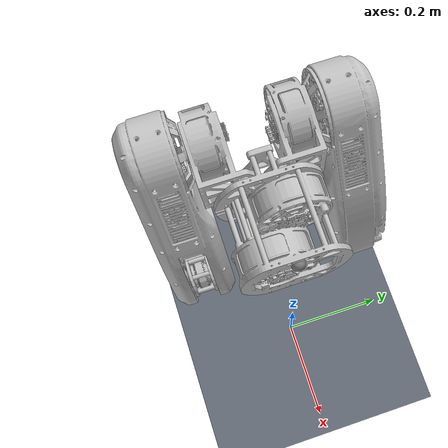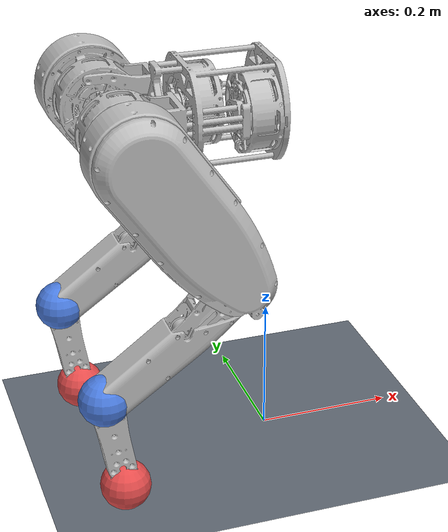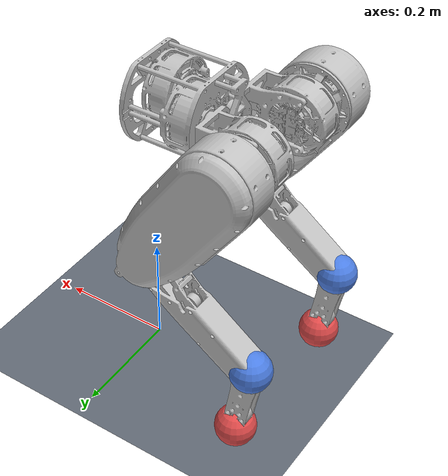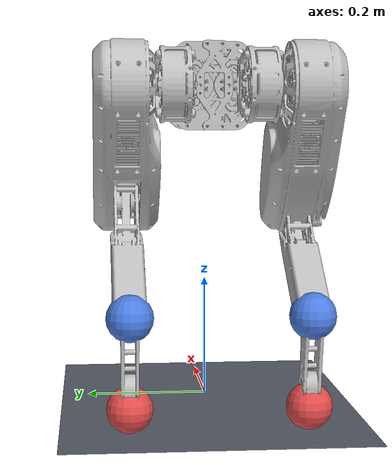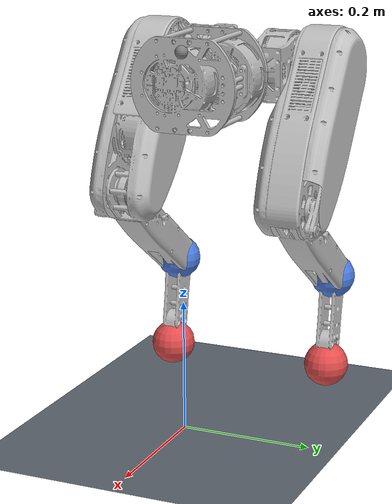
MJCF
<mujoco model="biped_cad_2.urdf">
  <compiler angle="radian" meshdir="03_Leg_UFDF_Colision_260811_1/meshes_mjcf/" />
  <asset>
    <texture name="floor_tex" type="2d" builtin="checker" rgb1="0.33 0.36 0.40" rgb2="0.42 0.45 0.50" width="512" height="512" />
    <material name="floor_mat" texture="floor_tex" texuniform="true" texrepeat="12 12" reflectance="0.12" />
    <mesh name="base_collision" content_type="model/stl" file="base_collision.STL" />
    <mesh name="HL_hip_link_collision" content_type="model/stl" file="HL_hip_link_collision.STL" />
    <mesh name="HL_thigh_link_collision" content_type="model/stl" file="HL_thigh_link_collision.STL" />
    <mesh name="HL_calf_link_collision" content_type="model/stl" file="HL_calf_link_collision.STL" />
    <mesh name="HL_foot_link_collision" content_type="model/stl" file="HL_foot_link_collision.STL" />
    <mesh name="HL_foot_contact_link_collision" content_type="model/stl" file="HL_foot_contact_link_collision.STL" />
    <mesh name="HR_hip_link_collision" content_type="model/stl" file="HR_hip_link_collision.STL" />
    <mesh name="HR_thigh_link_collision" content_type="model/stl" file="HR_thigh_link_collision.STL" />
    <mesh name="HR_calf_link_collision" content_type="model/stl" file="HR_calf_link_collision.STL" />
    <mesh name="HR_foot_link_collision" content_type="model/stl" file="HR_foot_link_collision.STL" />
    <mesh name="HR_foot_contact_link_collision" content_type="model/stl" file="HR_foot_contact_link_collision.STL" />
  </asset>
  <worldbody>
    <body name="torso" pos="0 0 0.5257">
      <freejoint name="root" />
      <inertial pos="-0.072651 -4.4686e-05 2.7227e-06" mass="2.8" fullinertia="0.0029362 0.0016967 0.0017243 4.3897e-06 3.2284e-07 -3.3685e-10" />
      <site name="imu" pos="0 0 0.05" size="0.01" />   <!-- ★IMU 장착점(실기 반영) -->
      <body name="payload" pos="0 0 0.04">
        <inertial pos="0 0 0" mass="2.352" diaginertia="0.0047 0.0047 0.0047" />
      </body>
      <geom type="mesh" contype="2" conaffinity="2" group="1" density="0" rgba="0.75294 0.75294 0.75294 1" mesh="base_collision" />
        <body name="HL_hip_link" pos="-0.225 0.0225 0">
          <inertial pos="0.026196 0.039035 -5.8825e-05" mass="1.3" fullinertia="0.0005559 0.00078767 0.00044966 1.3767e-05 2.7997e-09 -1.4339e-09" />
          <joint name="HL_hip_joint" pos="0 0 0" axis="1 0 0" range="-0.26 0.26" actuatorfrcrange="-84 84" />
          <geom type="mesh" contype="0" conaffinity="0" group="1" density="0" rgba="0.75294 0.75294 0.75294 1" mesh="HL_hip_link_collision" />
          <body name="HL_thigh_link" pos="0 0.115 0">
            <inertial pos="0.055714 0.00033952 -0.077945" mass="3.3" fullinertia="0.005622 0.0094645 0.0040228 1.4966e-06 0.002616 -4.1319e-06" />
            <joint name="HL_thigh_joint" pos="0 0 0" axis="0 1 0" range="-1.13 2.36" actuatorfrcrange="-84 84" />
            <geom type="mesh" contype="0" conaffinity="0" group="1" density="0" rgba="0.75294 0.75294 0.75294 1" mesh="HL_thigh_link_collision" />
            <body name="HL_calf_link" pos="0.13192 0 -0.1884">
              <inertial pos="-0.075484 0.000115677 -0.0672663" mass="0.65207" fullinertia="0.00111501 0.00267927 0.00159557 -6.32969e-10 -0.00116384 -1.22739e-10" />
              <joint name="HL_calf_joint" pos="0 0 0" axis="0 1 0" range="-1.1868 0.87" actuatorfrcrange="-226.8 226.8" />   <!-- ★226.8=126+100.8: calf 관절은 두 드라이브의 힘을 받는다. 근거는 점발판 주석 -->
              <geom type="mesh" contype="0" conaffinity="0" group="1" density="0" rgba="0.75294 0.75294 0.75294 1" mesh="HL_calf_link_collision" />
              <body name="HL_foot_link" pos="-0.18768 0 -0.15748">
                <inertial pos="0.0107476 -1.39397e-12 -0.0609525" mass="0.204919" fullinertia="0.000271645 0.000305655 3.80453e-05 -1.07641e-10 4.25117e-05 -1.89644e-11" />
                <joint name="HL_foot_joint" pos="0 0 0" axis="0 1 0" range="-1.48 1.1694" actuatorfrcrange="-100.8 100.8" />
                <geom type="mesh" contype="0" conaffinity="0" group="1" density="0" rgba="0.75294 0.75294 0.75294 1" mesh="HL_foot_link_collision" />
                <geom name="HL_sphere2" type="sphere" size="0.036" pos="0 0 0" rgba="0.3 0.5 0.9 1" friction="1.6 0.05 0.001" condim="3" solref="0.004 1" solimp="0.95 0.99 0.001" />
                <body name="HL_foot_contact_link" pos="0.025353 0 -0.14378">
                  <inertial pos="0.00167427 -8.03431e-09 -0.00949524" mass="0.0420009" fullinertia="1.23353e-05 1.66282e-05 1.63264e-05 -6.12961e-12 -7.26317e-07 -7.88503e-13" />
                  <geom type="mesh" contype="0" conaffinity="0" group="1" density="0" rgba="0.75294 0.75294 0.75294 1" mesh="HL_foot_contact_link_collision" />
                  <geom name="HL_sphere" type="sphere" size="0.036" pos="0 0 0" rgba="0.9 0.3 0.3 1" friction="1.6 0.05 0.001" condim="3" solref="0.004 1" solimp="0.95 0.99 0.001" />
                </body>
              </body>
            </body>
          </body>
        </body>
        <body name="HR_hip_link" pos="-0.225 -0.0225 0">
          <inertial pos="0.044964 -0.03664 4.8852e-05" mass="1.4" fullinertia="0.00055198 0.00081827 0.00046473 -2.2357e-06 -2.7997e-09 -1.4339e-09" />
          <joint name="HR_hip_joint" pos="0 0 0" axis="1 0 0" range="-0.26 0.26" actuatorfrcrange="-84 84" />
          <geom type="mesh" contype="0" conaffinity="0" group="1" density="0" rgba="0.75294 0.75294 0.75294 1" mesh="HR_hip_link_collision" />
          <body name="HR_thigh_link" pos="0 -0.115 0">
            <inertial pos="0.054189 -0.00033953 -0.079013" mass="3.3" fullinertia="0.0058914 0.0094645 0.0037534 -3.3709e-06 0.002518 2.8196e-06" />
            <joint name="HR_thigh_joint" pos="0 0 0" axis="0 1 0" range="-1.13 2.36" actuatorfrcrange="-84 84" />
            <geom type="mesh" contype="0" conaffinity="0" group="1" density="0" rgba="0.75294 0.75294 0.75294 1" mesh="HR_thigh_link_collision" />
            <body name="HR_calf_link" pos="0.13192 0 -0.1884">
              <inertial pos="-0.075484 -0.000113252 -0.0672663" mass="0.65207" fullinertia="0.00111501 0.00267927 0.00159557 5.2813e-10 -0.00116384 8.19537e-11" />
              <joint name="HR_calf_joint" pos="0 0 0" axis="0 1 0" range="-1.1868 0.87" actuatorfrcrange="-226.8 226.8" />   <!-- ★226.8=126+100.8: calf 관절은 두 드라이브의 힘을 받는다. 근거는 점발판 주석 -->
              <geom type="mesh" contype="0" conaffinity="0" group="1" density="0" rgba="0.75294 0.75294 0.75294 1" mesh="HR_calf_link_collision" />
              <body name="HR_foot_link" pos="-0.18768 0 -0.15748">
                <inertial pos="0.0107476 -1.394e-12 -0.0609525" mass="0.204919" fullinertia="0.000271645 0.000305655 3.80453e-05 -1.07641e-10 4.25117e-05 -1.89644e-11" />
                <joint name="HR_foot_joint" pos="0 0 0" axis="0 1 0" range="-1.48 1.1694" actuatorfrcrange="-100.8 100.8" />
                <geom type="mesh" contype="0" conaffinity="0" group="1" density="0" rgba="0.75294 0.75294 0.75294 1" mesh="HR_foot_link_collision" />
                <geom name="HR_sphere2" type="sphere" size="0.036" pos="0 0 0" rgba="0.3 0.5 0.9 1" friction="1.6 0.05 0.001" condim="3" solref="0.004 1" solimp="0.95 0.99 0.001" />
                <body name="HR_foot_contact_link" pos="0.025353 0 -0.14378">
                  <inertial pos="0.00167427 -8.03431e-09 -0.00949524" mass="0.0420009" fullinertia="1.23353e-05 1.66282e-05 1.63264e-05 -6.12961e-12 -7.26317e-07 -7.88503e-13" />
                  <geom type="mesh" contype="0" conaffinity="0" group="1" density="0" rgba="0.75294 0.75294 0.75294 1" mesh="HR_foot_contact_link_collision" />
                  <geom name="HR_sphere" type="sphere" size="0.036" pos="0 0 0" rgba="0.9 0.3 0.3 1" friction="1.6 0.05 0.001" condim="3" solref="0.004 1" solimp="0.95 0.99 0.001" />
                </body>
              </body>
            </body>
          </body>
        </body>
    </body>
    <geom name="floor" type="plane" size="0 0 0.1" material="floor_mat" contype="3" conaffinity="3" friction="1.6 0.05 0.001" solref="0.004 1" solimp="0.95 0.99 0.001" />
    <light pos="0 0 3" dir="0 0 -1" />
  </worldbody>
  <option timestep="0.002" gravity="0 0 -9.81" />
  <default>
    <geom friction="1.3 0.02 0.001" condim="3" />
    <motor ctrllimited="true" ctrlrange="-200 200" />
  </default>
  <!-- ★calf→foot 기구 커플링(실기 coef=+1). foot 로터가 raw 각(=foot+coef·calf)으로 돌아
       반사관성이 (calf,foot) 비대각으로 걸린다 — dof_armature 로는 표현 불가.
       armature 값은 여기 적지 않는다(런타임 setup_gearbox 주입. 여기 적으면 이중적용). -->
  <tendon>
    <fixed name="HL_foot_rotor">
      <joint joint="HL_calf_joint" coef="1" />
      <joint joint="HL_foot_joint" coef="1" />
    </fixed>
    <fixed name="HR_foot_rotor">
      <joint joint="HR_calf_joint" coef="1" />
      <joint joint="HR_foot_joint" coef="1" />
    </fixed>
  </tendon>
  <actuator>
    <!-- ★2026-08-13 발목 액추에이터를 **tendon 으로 옮겼다**(실기 기구 커플링 반영).
         점발판(biped_from_quad.mjcf)의 같은 블록과 **반드시 같이** 고칠 것. 근거는 그쪽 주석. -->
    <motor joint="HL_hip_joint" name="HL_hip" ctrlrange="-84 84" />
    <motor joint="HL_thigh_joint" name="HL_thigh" ctrlrange="-84 84" />
    <motor joint="HL_calf_joint" name="HL_calf" ctrlrange="-126 126" />
    <motor tendon="HL_foot_rotor" name="HL_foot" ctrlrange="-100.8 100.8" />
    <motor joint="HR_hip_joint" name="HR_hip" ctrlrange="-84 84" />
    <motor joint="HR_thigh_joint" name="HR_thigh" ctrlrange="-84 84" />
    <motor joint="HR_calf_joint" name="HR_calf" ctrlrange="-126 126" />
    <motor tendon="HR_foot_rotor" name="HR_foot" ctrlrange="-100.8 100.8" />
  </actuator>
  <!-- ★IMU 센서(실기 반영): 상태추정기 입력. framepos/framelinvel 은 GT 비교 전용. -->
  <sensor>
    <gyro          site="imu" name="imu_gyro"  />
    <accelerometer site="imu" name="imu_acc"   />
    <framequat     objtype="site" objname="imu" name="imu_quat" />
    <framepos      objtype="site" objname="imu" name="gt_pos"  />
    <framelinvel   objtype="site" objname="imu" name="gt_vel"  />
  </sensor>
</mujoco>
